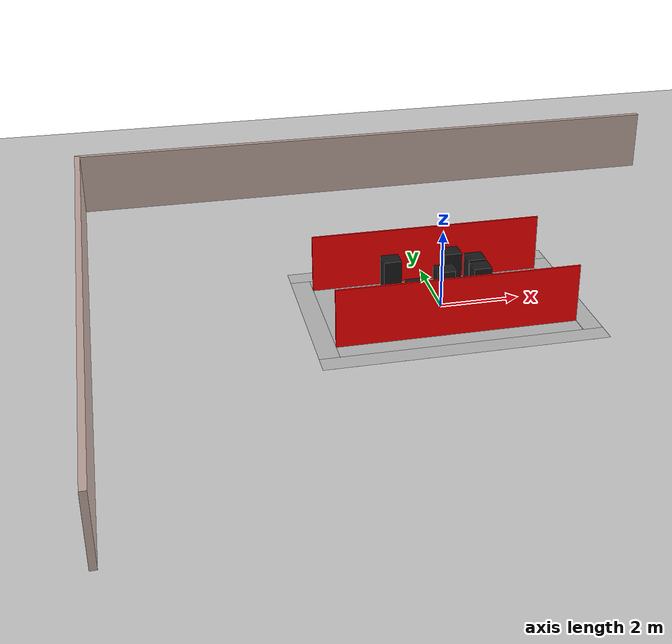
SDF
<?xml version="1.0" ?>
<sdf version='1.5'>
  <world name='RoboCup15MSL'>
<!-- scene -->
    <scene>
      <ambient>0.4 0.4 0.4 1</ambient>
      <background>0.7 0.7 0.7 1</background>
      <shadows>0</shadows>
    </scene>

<!-- spherical_coordinates -->
    <spherical_coordinates>
      <surface_model>EARTH_WGS84</surface_model>
      <latitude_deg>0</latitude_deg>
      <longitude_deg>0</longitude_deg>
      <elevation>0</elevation>
      <heading_deg>0</heading_deg>
    </spherical_coordinates>

<!-- lighting -->
 <light type="directional" name="sun">
    <cast_shadows>0</cast_shadows>

    <pose>0 0 10 0 0 0</pose>
    <diffuse>0.8 0.8 0.8 1</diffuse>
    <specular>0.2 0.2 0.2 1</specular>

    <attenuation>
      <range>1000</range>
      <constant>0.9</constant>
      <linear>0.01</linear>
      <quadratic>0.001</quadratic>
    </attenuation>

    <direction>-0.5 0.1 -0.9</direction>
  </light>

<!-- gui -->
    <gui fullscreen='0'>
      <camera name='user_camera'>
        <pose>0 -16 10 0 0.53 1.57</pose>
        <view_controller>orbit</view_controller>
      </camera>
    </gui>

<!-- physics -->
     <physics type='ode'>
      <max_step_size>0.015</max_step_size>
      <real_time_update_rate>67</real_time_update_rate>
      <gravity>0 0 -9.8</gravity>
    </physics>

<!-- The same as model://ground_plane -->
    <model name='ground_plane'>
      <static>true</static>
      <link name='link'>//
        <collision name='collision'>
          <geometry>
            <plane>
              <normal>0 0 1</normal>
              <size>100 100</size>
            </plane>
          </geometry>
          <surface>
            <friction>
              <ode>
                <mu>100</mu>
                <mu2>50</mu2>
              </ode>
            </friction>
            <contact>
              <ode/>
            </contact>
            <bounce/>
          </surface>
          <max_contacts>10</max_contacts>
        </collision>
        <visual name='visual'>
          <cast_shadows>0</cast_shadows>
          <geometry>
            <plane>
              <normal>0 0 1</normal>
              <size>100 100</size>
            </plane>
          </geometry>
          <material>
            <script>
              <uri>file://media/materials/scripts/gazebo.material</uri>
              <name>Gazebo/Grey</name>
            </script>
          </material>
        </visual>
        <velocity_decay>
          <linear>0</linear>
          <angular>0</angular>
        </velocity_decay>
        <self_collide>0</self_collide>
        <kinematic>0</kinematic>
        <gravity>1</gravity>
      </link>
    </model>

<!-- RoboCup 2015 MSL Field -->
    <include>
        <pose>0 0 0 0 0 0</pose>
        <uri>model://FIRA_Field</uri>
        <name>field</name>
        <static>true</static>
    </include>

<!-- RoboCup 2015 MSL Goal left -->

<!-- RoboCup 2015 MSL Goal right -->
<!-- FIRA Wall -->
    <include>
        <pose>0 0 -0.8 0 0 0 </pose>
        <uri>model://wall</uri>
        <name>wall</name>
        <static>true</static>
    </include>
<!-- FIRA Obstacle -->
    <include>
      <pose>1.01 0.53 0.01 0 0 0 </pose>
      <uri>model://FIRA_Obstacle</uri>
      <name>obstacle_1</name>
      <static>true</static>
    </include>

    <include>
      <pose>-1.10 0.85 0.01 0 0 0 </pose>
      <uri>model://FIRA_Obstacle</uri>
      <name>obstacle_2</name>
      <static>true</static>
    </include>

    <include>
      <pose>1.85 -0.84 0.01 0 0 0 </pose>
      <uri>model://FIRA_Obstacle</uri>
      <name>obstacle_3</name>
      <static>true</static>
    </include>

    <include>
      <pose>-0.83 -0.59 0.01 0 0 0 </pose>
      <uri>model://FIRA_Obstacle</uri>
      <name>obstacle_4</name>
      <static>true</static>
    </include>

    <include>
      <pose>1 0 0.01 0 0 0 </pose>
      <uri>model://FIRA_Obstacle</uri>
      <name>obstacle_5</name>
      <static>true</static>
    </include>

    <include>
      <pose>0.51 0.98 0.01 0 0 0 </pose>
      <uri>model://FIRA_Obstacle</uri>
      <name>obstacle_6</name>
      <static>true</static>
    </include>

    <include>
      <pose>0.48 -1.04 0.01 0 0 0 </pose>
      <uri>model://FIRA_Obstacle</uri>
      <name>obstacle_7</name>
      <static>true</static>
    </include>

    <include>
      <pose>0.06 0.01 0.01 0 0 0 </pose>
      <uri>model://FIRA_Obstacle</uri>
      <name>obstacle_8</name>
      <static>true</static>
    </include>

    <include>
      <pose>0.0 -1.5 0.01 0 0 0 </pose>
      <uri>model://red_line</uri>
      <name>red_line_left</name>
      <static>True</static>
    </include>

    <include>
      <pose>0.0 1.5 0.01 0 0 0 </pose>
      <uri>model://red_line</uri>
      <name>red_line_right</name>
      <static>True</static>
    </include>

    <!-- goal -->
  </world>
</sdf>

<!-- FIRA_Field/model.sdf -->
<sdf version="1.4">
  <model name="FIRA_Field">
    <static>true</static>

    <link name="chassis">
      <pose>0 0 0.01 0 0 0</pose>
      <collision name="collision">
        <geometry>
          <plane>
            <normal>0 0 1</normal>
            <size>6 4</size>
          </plane>
        </geometry>
        <surface>
          <friction>
            <ode>
              <mu>100</mu>
              <mu2>50</mu2>
            </ode>
          </friction>
        </surface>
      </collision>

      <visual name="carpet">
        <cast_shadows>false</cast_shadows>
        <geometry>
          <plane>
            <normal>0 0 1</normal>
            <size>6 4</size>
          </plane>
        </geometry>
        <material>
          <script>
            <uri>file://materials/scripts/</uri>
            <uri>file://materials/textures/</uri>
            <name>RoboCup/Carpet</name>
          </script>
        </material>
      </visual>

       <visual name="base1">
        <pose>0 2.25 0.01 0 0 0</pose>
        <cast_shadows>false</cast_shadows>
        <geometry>
          <plane>
            <normal>0 0 1</normal>
            <size>7.0 0.5</size>
          </plane>
        </geometry>
        <material>
          <script>
            <uri>file://materials/scripts/</uri>
            <uri>file://materials/textures/</uri>
            <name>RoboCup/FieldBorder</name>
          </script>
        </material>
      </visual>
      <visual name="base2">
        <pose>0 -2.25 0.01 0 0 0</pose>
        <cast_shadows>false</cast_shadows>
        <geometry>
          <plane>
            <normal>0 0 1</normal>
            <size>7.0 0.5</size>
          </plane>
        </geometry>
        <material>
          <script>
            <uri>file://materials/scripts/</uri>
            <uri>file://materials/textures/</uri>
            <name>RoboCup/FieldBorder</name>
          </script>
        </material>
      </visual>
      <visual name="base3">
        <pose>3.25 0 0.01 0 0 0</pose>
        <cast_shadows>false</cast_shadows>
        <geometry>
          <plane>
            <normal>0 0 1</normal>
            <size>0.5 4.0</size>
          </plane>
        </geometry>
        <material>
          <script>
            <uri>file://materials/scripts/</uri>
            <uri>file://materials/textures/</uri>
            <name>RoboCup/FieldBorder</name>
          </script>
        </material>
      </visual>
      <visual name="base4">
        <pose>-3.25 0 0.01 0 0 0</pose>
        <cast_shadows>false</cast_shadows>
        <geometry>
          <plane>
            <normal>0 0 1</normal>
            <size>0.5 4.0</size>
          </plane>
        </geometry>
        <material>
          <script>
            <uri>file://materials/scripts/</uri>
            <uri>file://materials/textures/</uri>
            <name>RoboCup/FieldBorder</name>
          </script>
        </material>
      </visual>
    </link>

  </model>
</sdf>

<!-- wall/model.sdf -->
<sdf version='1.6'>
  <model name='wall'>
    <pose frame=''>-1.26581 1.80502 0 0 -0 0</pose>
    <link name='Wall_0'>
      <collision name='Wall_0_Collision'>
        <geometry>
          <box>
            <size>16.5 0.15 2.5</size>
          </box>
        </geometry>
        <pose frame=''>0 0 1.25 0 -0 0</pose>
      </collision>
      <visual name='Wall_0_Visual'>
        <pose frame=''>0 0 1.25 0 -0 0</pose>
        <geometry>
          <box>
            <size>16.5 0.15 2.5</size>
          </box>
        </geometry>
        <material>
          <script>
            <uri>file://media/materials/scripts/gazebo.material</uri>
            <name>Gazebo/Grey</name>
          </script>
          <ambient>0.760784 0.662745 0.627451 1</ambient>
        </material>
        <meta>
          <layer>0</layer>
        </meta>
      </visual>
      <pose frame=''>-8.71419 -1.8e-05 0 0 0 -1.5708</pose>
    </link>
    <link name='Wall_2'>
      <collision name='Wall_2_Collision'>
        <geometry>
          <box>
            <size>17.5784 0.15 2.5</size>
          </box>
        </geometry>
        <pose frame=''>0 0 1.25 0 -0 0</pose>
      </collision>
      <visual name='Wall_2_Visual'>
        <pose frame=''>0 0 1.25 0 -0 0</pose>
        <geometry>
          <box>
            <size>17.5784 0.15 2.5</size>
          </box>
        </geometry>
        <material>
          <script>
            <uri>file://media/materials/scripts/gazebo.material</uri>
            <name>Gazebo/Grey</name>
          </script>
          <ambient>0.760784 0.662745 0.627451 1</ambient>
        </material>
        <meta>
          <layer>0</layer>
        </meta>
      </visual>
      <pose frame=''>0 8.17066 0 0 0 -0.000496</pose>
    </link>
    <static>1</static>
  </model>
</sdf>

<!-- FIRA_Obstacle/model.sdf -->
<sdf version="1.4">
   <model name="avoid_goal">
      <link name="base">
         <pose>0.0 0.0 0.51 0 0 0</pose>

         <inertial>
            <mass>31</mass>
            <pose>0 0 0 0 0 0</pose>
            <inertia>
               <ixx>100</ixx>
               <ixy>0</ixy>
               <ixz>0</ixz>
               <iyy>100</iyy>
               <iyz>0</iyz>
               <izz>2.86</izz>
            </inertia>
         </inertial>

         <collision name="box_collision">
            <geometry>
               <box>
                  <size>.45 .45 1.0</size>
               </box>
            </geometry>
            <surface>
               <bounce>
                  <restitution_coefficient>0</restitution_coefficient>
               </bounce>
               <friction>
                  <ode>
                     <mu>0.1</mu>
                     <mu2>0.1</mu2>
                  </ode>
               </friction>
            </surface>
         </collision>

         <visual name="visual">
            <geometry>
               <box>
                  <size>.45 .45 1.0</size>
               </box>
            </geometry>

            <material> <!-- Wheel material -->
               <ambient>0.1 0.1 0.1 1</ambient>
               <diffuse>0.1 0.1 0.1 1</diffuse>
               <specular>0 0 0 0</specular>
               <emissive>0 0 0 1</emissive>
            </material> <!-- End wheel material -->
         </visual>

         <velocity_decay>
            <linear>0</linear>
            <angular>0</angular>
         </velocity_decay>
         <self_collide>0</self_collide>
         <gravity>1</gravity>

         <sensor name="RFsrRL" type="contact">
            <always_on>1</always_on>
            <update_rate>20</update_rate>
            <visualize>true</visualize>
            <contact>
               <collision>box_collision</collision>
            </contact>
            <plugin name="gazebo_ros_bumper_ controller" filename="libgazebo_ros_bumper.so">
               <alwaysOn>true</alwaysOn>
               <updateRate>20</updateRate>
               <bumperTopicName>bumper</bumperTopicName>
               <frameName>symbol</frameName>
            </plugin>
         </sensor>
      </link>

      <plugin name="nubot_gazebo" filename="libnubot_gazebo.so" />
   </model>
</sdf>

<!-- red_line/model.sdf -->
<sdf version='1.6'>
  <model name='red_line'>
    <pose frame=''>1.185 -0.44 0 0 -0 0</pose>
    <link name='Wall_0'>
      <collision name='Wall_0_Collision'>
        <geometry>
          <box>
            <size>6 0.05 1.5</size>
          </box>
        </geometry>
        <pose frame=''>0 0 0.75 0 -0 0</pose>
      </collision>
      <visual name='Wall_0_Visual'>
        <pose frame=''>0 0 0.75 0 -0 0</pose>
        <geometry>
          <box>
            <size>6 0.05 1.5</size>
          </box>
        </geometry>
        <material>
          <script>
            <uri>file://media/materials/scripts/gazebo.material</uri>
            <name>Gazebo/Grey</name>
          </script>
          <ambient>1 0 0 1</ambient>
        </material>
      </visual>
      <pose frame=''>0 0 0 0 -0 3.14159</pose>
    </link>
    <static>1</static>
  </model>
</sdf>
